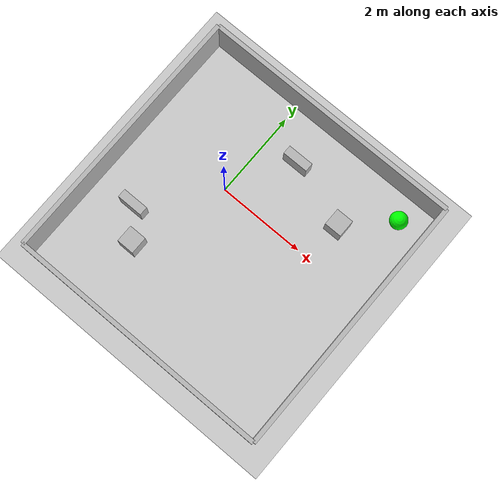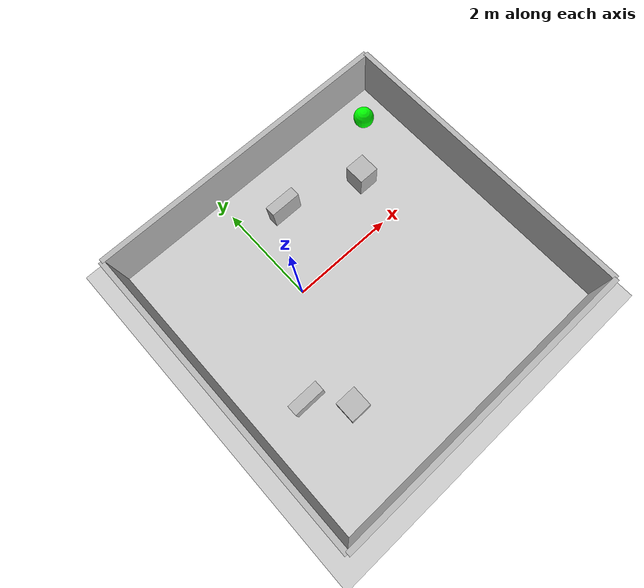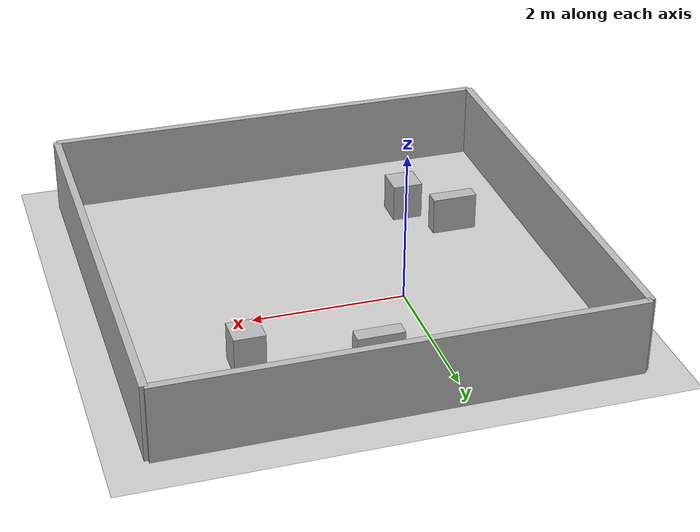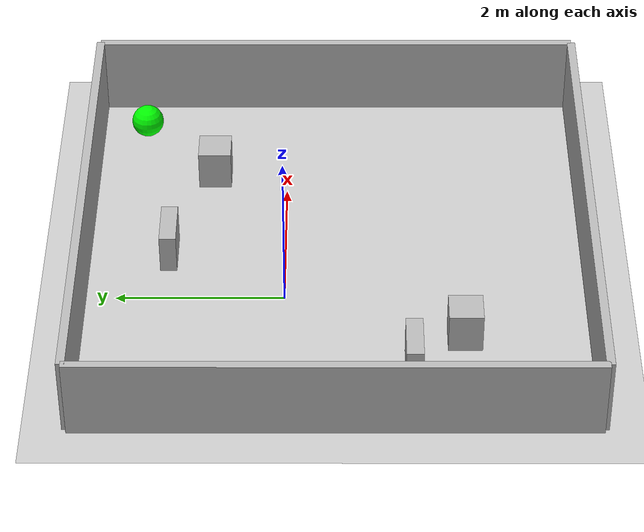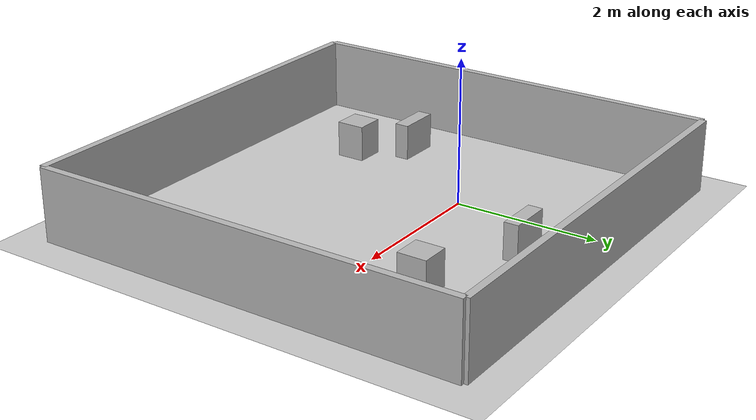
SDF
<?xml version="1.0"?>
<sdf version="1.6">
  <world name="martha_test_world_2">
    <physics name="default_physics" type="ode">
      <max_step_size>0.001</max_step_size>
      <real_time_update_rate>1000</real_time_update_rate>
      <real_time_factor>1.0</real_time_factor>
    </physics>
    <gravity>0 0 -9.81</gravity>
    <include><uri>model://sun</uri></include>
    <include><uri>model://ground_plane</uri></include>
    <plugin name="gazebo_ros_state" filename="libgazebo_ros_state.so">
      <ros><namespace>/gazebo</namespace></ros>
      <update_rate>50.0</update_rate>
    </plugin>

    <!-- Arena center: (0.8, -0.6). Martha starts off-center. -->
    <model name="wall_left"><static>true</static><pose>0.8 2.4 0.5 0 0 0</pose><link name="link"><collision name="collision"><geometry><box><size>6 0.1 1</size></box></geometry></collision><visual name="visual"><geometry><box><size>6 0.1 1</size></box></geometry></visual></link></model>
    <model name="wall_right"><static>true</static><pose>0.8 -3.6 0.5 0 0 0</pose><link name="link"><collision name="collision"><geometry><box><size>6 0.1 1</size></box></geometry></collision><visual name="visual"><geometry><box><size>6 0.1 1</size></box></geometry></visual></link></model>
    <model name="wall_front"><static>true</static><pose>3.8 -0.6 0.5 0 0 0</pose><link name="link"><collision name="collision"><geometry><box><size>0.1 6 1</size></box></geometry></collision><visual name="visual"><geometry><box><size>0.1 6 1</size></box></geometry></visual></link></model>
    <model name="wall_back"><static>true</static><pose>-2.2 -0.6 0.5 0 0 0</pose><link name="link"><collision name="collision"><geometry><box><size>0.1 6 1</size></box></geometry></collision><visual name="visual"><geometry><box><size>0.1 6 1</size></box></geometry></visual></link></model>

    <model name="obs_1"><static>true</static><pose>2.3 0.9 0.25 0 0 0</pose><link name="link"><collision name="collision"><geometry><box><size>0.4 0.4 0.5</size></box></geometry></collision><visual name="visual"><geometry><box><size>0.4 0.4 0.5</size></box></geometry></visual></link></model>
    <model name="obs_2"><static>true</static><pose>-0.7 -2.1 0.25 0 0 0</pose><link name="link"><collision name="collision"><geometry><box><size>0.4 0.4 0.5</size></box></geometry></collision><visual name="visual"><geometry><box><size>0.4 0.4 0.5</size></box></geometry></visual></link></model>
    <model name="obs_3"><static>true</static><pose>0.8 1.4 0.25 0 0 0</pose><link name="link"><collision name="collision"><geometry><box><size>0.6 0.2 0.5</size></box></geometry></collision><visual name="visual"><geometry><box><size>0.6 0.2 0.5</size></box></geometry></visual></link></model>
    <model name="obs_4"><static>true</static><pose>-1.2 -1.5 0.25 0 0 0</pose><link name="link"><collision name="collision"><geometry><box><size>0.6 0.2 0.5</size></box></geometry></collision><visual name="visual"><geometry><box><size>0.6 0.2 0.5</size></box></geometry></visual></link></model>

    <model name="goal_point">
      <static>true</static><pose>3.2 1.8 0.2 0 0 0</pose>
      <link name="link"><visual name="visual"><geometry><sphere><radius>0.2</radius></sphere></geometry><material><ambient>0 1 0 1</ambient><diffuse>0 1 0 1</diffuse></material></visual></link>
    </model>
  </world>
</sdf>
